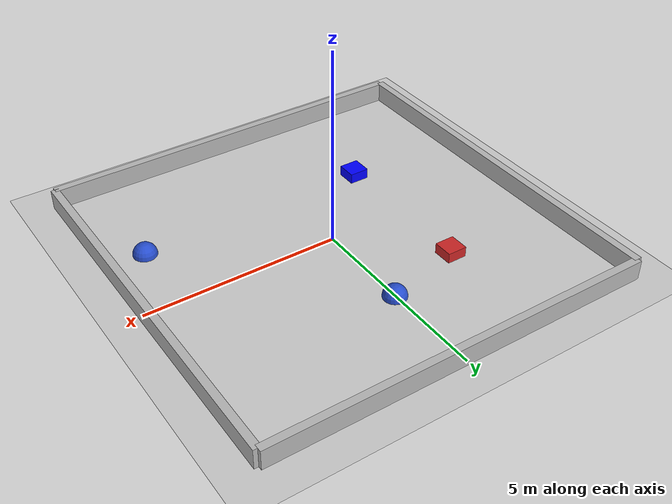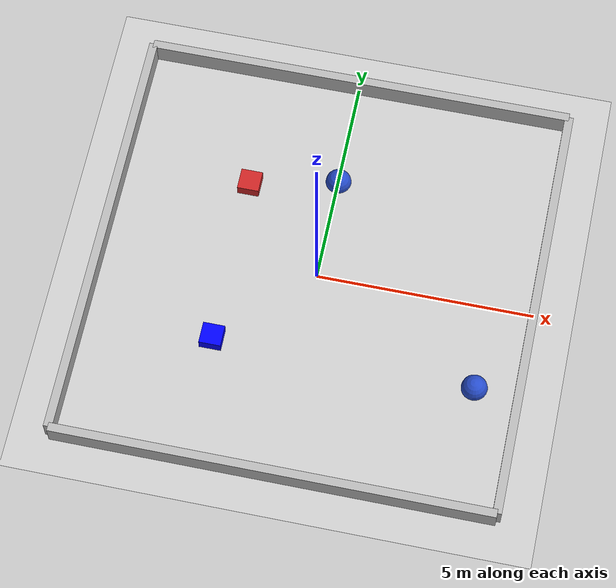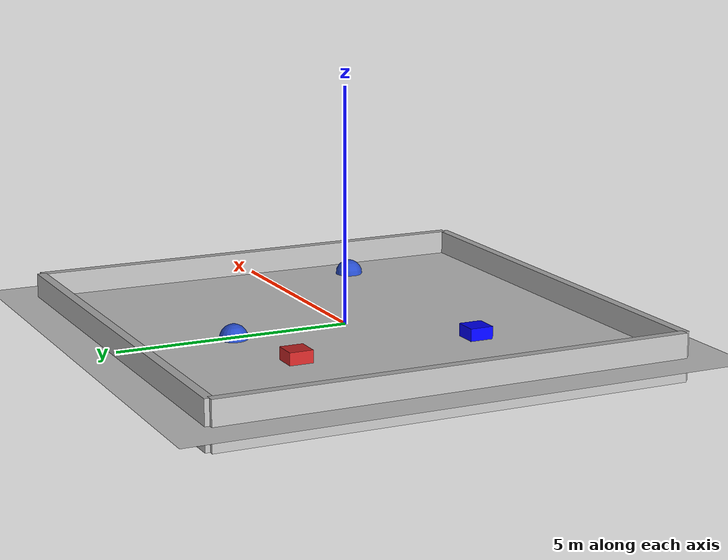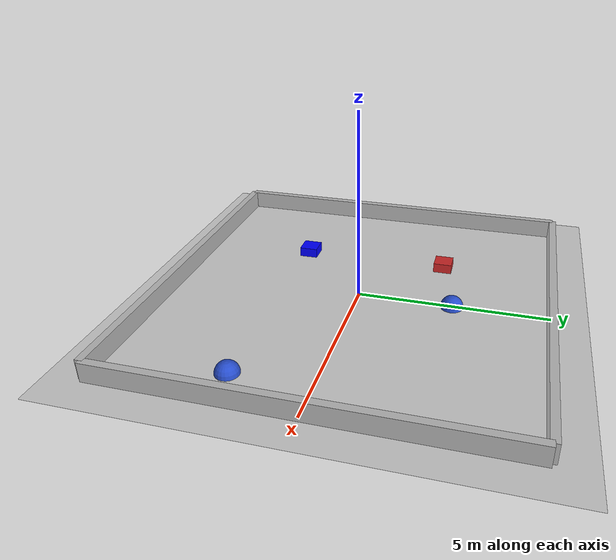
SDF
<sdf version="1.6">
 <world name="default">
  <include><uri>model://sun</uri></include>
  <include><uri>model://ground_plane</uri></include>
  <model name="wall1">
   <static>true</static>
   <pose>0 5 0 0 0 0</pose>
   <link name="link">
    <collision name="collision"><geometry><box><size>10 0.2 1</size></box></geometry></collision>
    <visual name="visual"><geometry><box><size>10 0.2 1</size></box></geometry></visual>
   </link>
  </model>
  <model name="wall2">
   <static>true</static>
   <pose>0 -5 0 0 0 0</pose>
   <link name="link">
    <collision name="collision"><geometry><box><size>10 0.2 1</size></box></geometry></collision>
    <visual name="visual"><geometry><box><size>10 0.2 1</size></box></geometry></visual>
   </link>
  </model>
  <model name="wall3">
   <static>true</static>
   <pose>5 0 0 0 0 1.57</pose>
   <link name="link">
    <collision name="collision"><geometry><box><size>10 0.2 1</size></box></geometry></collision>
    <visual name="visual"><geometry><box><size>10 0.2 1</size></box></geometry></visual>
   </link>
  </model>
  <model name="wall4">
   <static>true</static>
   <pose>-5 0 0 0 0 1.57</pose>
   <link name="link">
    <collision name="collision"><geometry><box><size>10 0.2 1</size></box></geometry></collision>
    <visual name="visual"><geometry><box><size>10 0.2 1</size></box></geometry></visual>
   </link>
  </model>
  <model name="cube 1">
   <static>true</static>
   <pose>-2 -2 0 0 0 0</pose>
   <link name="link">
    <collision name="collision"><geometry><box><size>0.5 0.5 0.5</size></box></geometry></collision>
    <visual name="visual">
     <geometry><box><size>0.5 0.5 0.5</size></box></geometry>
     <material><ambient>0 0 1 1</ambient></material>
    </visual>
   </link>
  </model>
  <model name="caja_obstaculo">
   <static>true</static>
   <pose>-2 2 0 0 0 0</pose>
   <link name="caja_link">
    <collision name="caja_collision"><geometry><box><size>0.5 0.5 0.5</size></box></geometry></collision>
    <visual name="caja_visual">
     <geometry><box><size>0.5 0.5 0.5</size></box></geometry>
     <material>
      <script><uri>file://media/materials/scripts/gazebo.material</uri><name>Gazebo/Red</name></script>
     </material>
    </visual>
   </link>
  </model>
  <model name="esfera_obstaculo">
   <static>true</static>
   <pose>4 -2 0 0 0 0</pose>
   <link name="esfera_link">
    <collision name="esfera_collision"><geometry><sphere><radius>0.3</radius></sphere></geometry></collision>
    <visual name="esfera_visual">
     <geometry><sphere><radius>0.3</radius></sphere></geometry>
     <material>
      <script><uri>file://media/materials/scripts/gazebo.material</uri><name>Gazebo/Blue</name></script>
     </material>
    </visual>
   </link>
  </model>
  <model name="esfera_obstaculo_2">
   <static>true</static>
   <pose>0 2.5 0 0 0 0</pose>
   <link name="esfera_link">
    <collision name="esfera_collision"><geometry><sphere><radius>0.3</radius></sphere></geometry></collision>
    <visual name="esfera_visual">
     <geometry><sphere><radius>0.3</radius></sphere></geometry>
     <material>
      <script><uri>file://media/materials/scripts/gazebo.material</uri><name>Gazebo/Blue</name></script>
     </material>
    </visual>
   </link>
  </model>
 </world>
</sdf>
